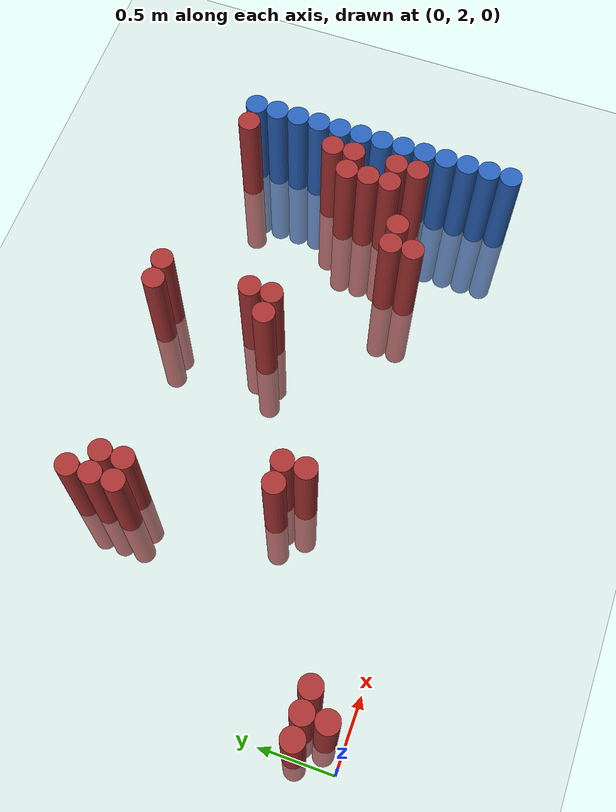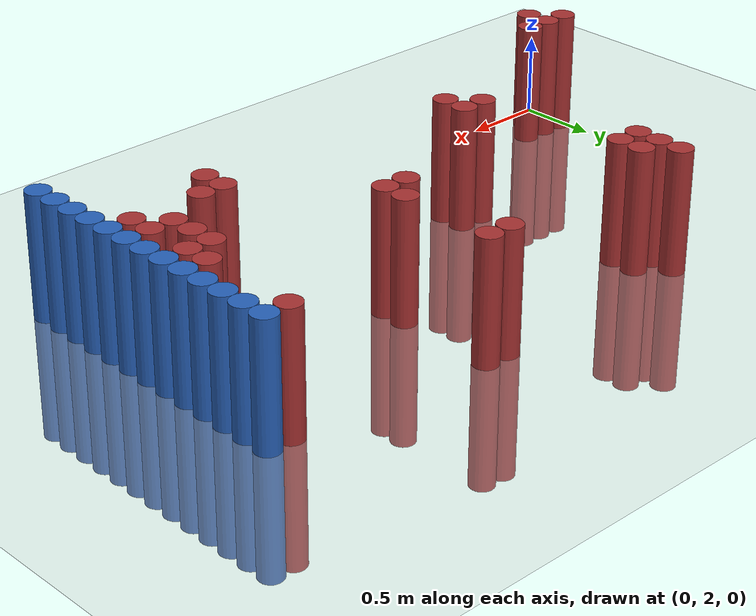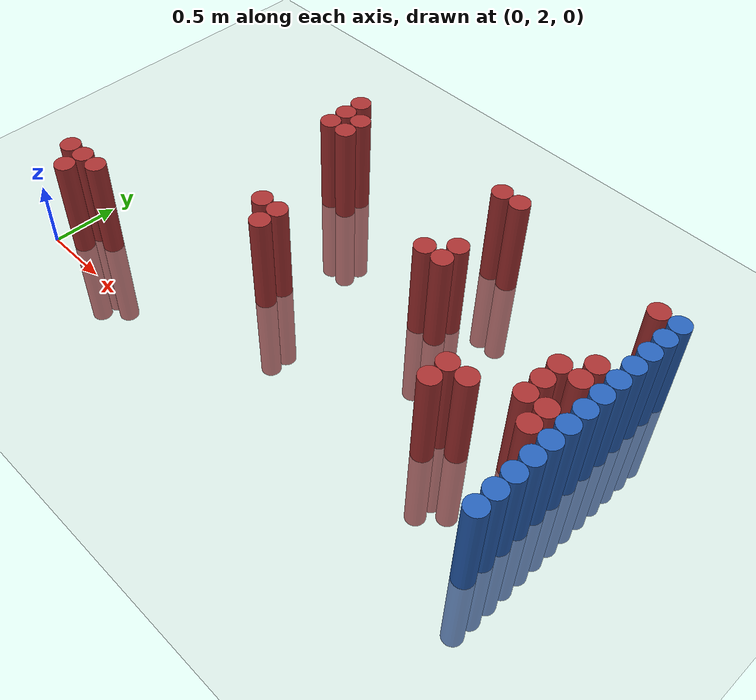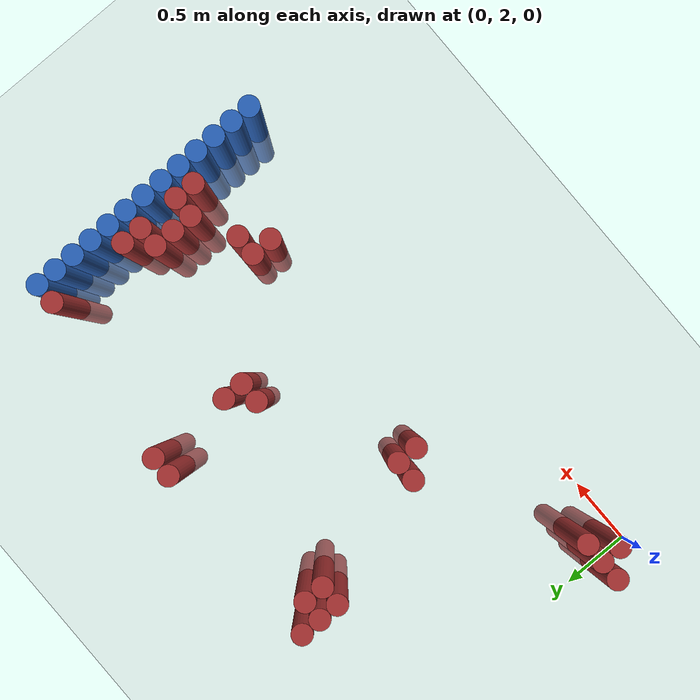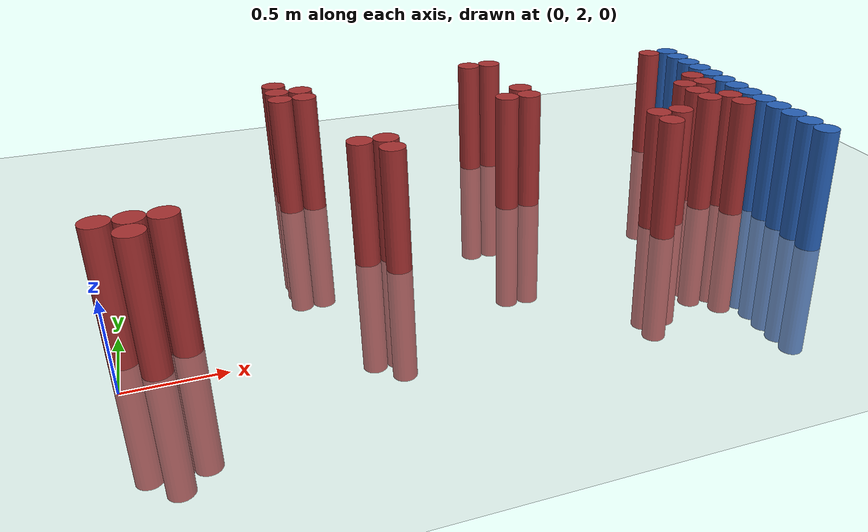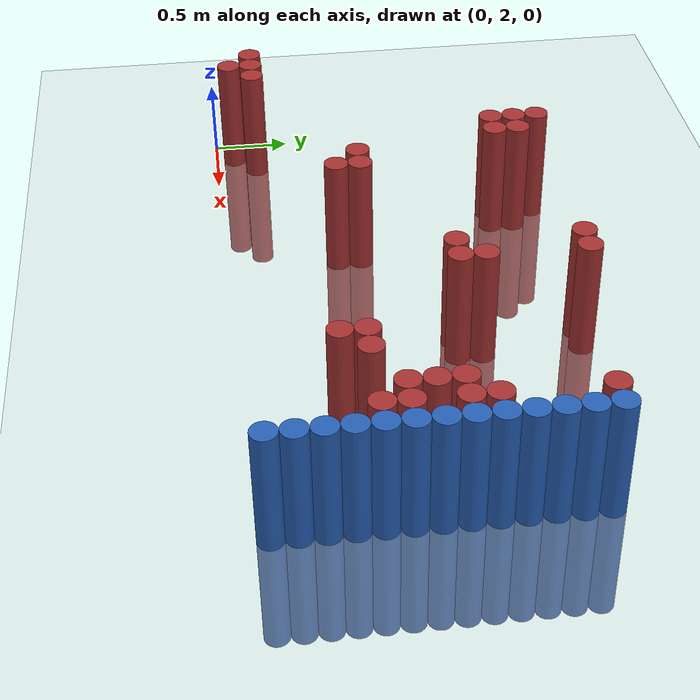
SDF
<sdf version="1.6">
 <world name="default">
  <model name="ground_plane">
   <static>1</static>
   <link name="link">
    <collision name="collision">
     <geometry><plane><normal>0 0 1</normal><size>100 100</size></plane></geometry>
     <surface><friction><ode><mu>100</mu><mu2>50</mu2></ode></friction></surface>
    </collision>
    <visual name="visual">
     <cast_shadows>0</cast_shadows>
     <geometry><plane><normal>0 0 1</normal><size>100 100</size></plane></geometry>
     <material>
      <script><uri>file://media/materials/scripts/gazebo.material</uri><name>Gazebo/Grey</name></script>
     </material>
    </visual>
   </link>
  </model>
  <model name="unit_cylinder_142">
   <static>1</static>
   <pose>3.925000 2.125000 0.000000 0.000000 0.000000 0.000000</pose>
   <link name="link">
    <inertial>
     <mass>1</mass>
     <inertia><ixx>0.145833</ixx><ixy>0</ixy><ixz>0</ixz><iyy>0.145833</iyy><iyz>0</iyz><izz>0.125</izz></inertia>
    </inertial>
    <collision name="collision">
     <geometry><cylinder><radius>0.075000</radius><length>1.5</length></cylinder></geometry>
    </collision>
    <visual name="visual">
     <geometry><cylinder><radius>0.075000</radius><length>1.5</length></cylinder></geometry>
     <material>
      <ambient>0.152000 0.379000 0.720000 1</ambient>
      <diffuse>0.152000 0.379000 0.720000 1</diffuse>
     </material>
     <material>
      <script><name>Gazebo/Grey</name><uri>file://media/materials/scripts/gazebo.material</uri></script>
     </material>
    </visual>
   </link>
  </model>
  <model name="unit_cylinder_144">
   <static>1</static>
   <pose>3.925000 2.275000 0.000000 0.000000 0.000000 0.000000</pose>
   <link name="link">
    <inertial>
     <mass>1</mass>
     <inertia><ixx>0.145833</ixx><ixy>0</ixy><ixz>0</ixz><iyy>0.145833</iyy><iyz>0</iyz><izz>0.125</izz></inertia>
    </inertial>
    <collision name="collision">
     <geometry><cylinder><radius>0.075000</radius><length>1.5</length></cylinder></geometry>
    </collision>
    <visual name="visual">
     <geometry><cylinder><radius>0.075000</radius><length>1.5</length></cylinder></geometry>
     <material>
      <ambient>0.152000 0.379000 0.720000 1</ambient>
      <diffuse>0.152000 0.379000 0.720000 1</diffuse>
     </material>
     <material>
      <script><name>Gazebo/Grey</name><uri>file://media/materials/scripts/gazebo.material</uri></script>
     </material>
    </visual>
   </link>
  </model>
  <model name="unit_cylinder_146">
   <static>1</static>
   <pose>3.925000 2.425000 0.000000 0.000000 0.000000 0.000000</pose>
   <link name="link">
    <inertial>
     <mass>1</mass>
     <inertia><ixx>0.145833</ixx><ixy>0</ixy><ixz>0</ixz><iyy>0.145833</iyy><iyz>0</iyz><izz>0.125</izz></inertia>
    </inertial>
    <collision name="collision">
     <geometry><cylinder><radius>0.075000</radius><length>1.5</length></cylinder></geometry>
    </collision>
    <visual name="visual">
     <geometry><cylinder><radius>0.075000</radius><length>1.5</length></cylinder></geometry>
     <material>
      <ambient>0.152000 0.379000 0.720000 1</ambient>
      <diffuse>0.152000 0.379000 0.720000 1</diffuse>
     </material>
     <material>
      <script><name>Gazebo/Grey</name><uri>file://media/materials/scripts/gazebo.material</uri></script>
     </material>
    </visual>
   </link>
  </model>
  <model name="unit_cylinder_148">
   <static>1</static>
   <pose>3.925000 2.575000 0.000000 0.000000 0.000000 0.000000</pose>
   <link name="link">
    <inertial>
     <mass>1</mass>
     <inertia><ixx>0.145833</ixx><ixy>0</ixy><ixz>0</ixz><iyy>0.145833</iyy><iyz>0</iyz><izz>0.125</izz></inertia>
    </inertial>
    <collision name="collision">
     <geometry><cylinder><radius>0.075000</radius><length>1.5</length></cylinder></geometry>
    </collision>
    <visual name="visual">
     <geometry><cylinder><radius>0.075000</radius><length>1.5</length></cylinder></geometry>
     <material>
      <ambient>0.152000 0.379000 0.720000 1</ambient>
      <diffuse>0.152000 0.379000 0.720000 1</diffuse>
     </material>
     <material>
      <script><name>Gazebo/Grey</name><uri>file://media/materials/scripts/gazebo.material</uri></script>
     </material>
    </visual>
   </link>
  </model>
  <model name="unit_cylinder_150">
   <static>1</static>
   <pose>3.925000 2.725000 0.000000 0.000000 0.000000 0.000000</pose>
   <link name="link">
    <inertial>
     <mass>1</mass>
     <inertia><ixx>0.145833</ixx><ixy>0</ixy><ixz>0</ixz><iyy>0.145833</iyy><iyz>0</iyz><izz>0.125</izz></inertia>
    </inertial>
    <collision name="collision">
     <geometry><cylinder><radius>0.075000</radius><length>1.5</length></cylinder></geometry>
    </collision>
    <visual name="visual">
     <geometry><cylinder><radius>0.075000</radius><length>1.5</length></cylinder></geometry>
     <material>
      <ambient>0.152000 0.379000 0.720000 1</ambient>
      <diffuse>0.152000 0.379000 0.720000 1</diffuse>
     </material>
     <material>
      <script><name>Gazebo/Grey</name><uri>file://media/materials/scripts/gazebo.material</uri></script>
     </material>
    </visual>
   </link>
  </model>
  <model name="unit_cylinder_152">
   <static>1</static>
   <pose>3.925000 2.875000 0.000000 0.000000 0.000000 0.000000</pose>
   <link name="link">
    <inertial>
     <mass>1</mass>
     <inertia><ixx>0.145833</ixx><ixy>0</ixy><ixz>0</ixz><iyy>0.145833</iyy><iyz>0</iyz><izz>0.125</izz></inertia>
    </inertial>
    <collision name="collision">
     <geometry><cylinder><radius>0.075000</radius><length>1.5</length></cylinder></geometry>
    </collision>
    <visual name="visual">
     <geometry><cylinder><radius>0.075000</radius><length>1.5</length></cylinder></geometry>
     <material>
      <ambient>0.152000 0.379000 0.720000 1</ambient>
      <diffuse>0.152000 0.379000 0.720000 1</diffuse>
     </material>
     <material>
      <script><name>Gazebo/Grey</name><uri>file://media/materials/scripts/gazebo.material</uri></script>
     </material>
    </visual>
   </link>
  </model>
  <model name="unit_cylinder_154">
   <static>1</static>
   <pose>3.925000 3.025000 0.000000 0.000000 0.000000 0.000000</pose>
   <link name="link">
    <inertial>
     <mass>1</mass>
     <inertia><ixx>0.145833</ixx><ixy>0</ixy><ixz>0</ixz><iyy>0.145833</iyy><iyz>0</iyz><izz>0.125</izz></inertia>
    </inertial>
    <collision name="collision">
     <geometry><cylinder><radius>0.075000</radius><length>1.5</length></cylinder></geometry>
    </collision>
    <visual name="visual">
     <geometry><cylinder><radius>0.075000</radius><length>1.5</length></cylinder></geometry>
     <material>
      <ambient>0.152000 0.379000 0.720000 1</ambient>
      <diffuse>0.152000 0.379000 0.720000 1</diffuse>
     </material>
     <material>
      <script><name>Gazebo/Grey</name><uri>file://media/materials/scripts/gazebo.material</uri></script>
     </material>
    </visual>
   </link>
  </model>
  <model name="unit_cylinder_156">
   <static>1</static>
   <pose>3.925000 3.175000 0.000000 0.000000 0.000000 0.000000</pose>
   <link name="link">
    <inertial>
     <mass>1</mass>
     <inertia><ixx>0.145833</ixx><ixy>0</ixy><ixz>0</ixz><iyy>0.145833</iyy><iyz>0</iyz><izz>0.125</izz></inertia>
    </inertial>
    <collision name="collision">
     <geometry><cylinder><radius>0.075000</radius><length>1.5</length></cylinder></geometry>
    </collision>
    <visual name="visual">
     <geometry><cylinder><radius>0.075000</radius><length>1.5</length></cylinder></geometry>
     <material>
      <ambient>0.152000 0.379000 0.720000 1</ambient>
      <diffuse>0.152000 0.379000 0.720000 1</diffuse>
     </material>
     <material>
      <script><name>Gazebo/Grey</name><uri>file://media/materials/scripts/gazebo.material</uri></script>
     </material>
    </visual>
   </link>
  </model>
  <model name="unit_cylinder_158">
   <static>1</static>
   <pose>3.925000 3.325000 0.000000 0.000000 0.000000 0.000000</pose>
   <link name="link">
    <inertial>
     <mass>1</mass>
     <inertia><ixx>0.145833</ixx><ixy>0</ixy><ixz>0</ixz><iyy>0.145833</iyy><iyz>0</iyz><izz>0.125</izz></inertia>
    </inertial>
    <collision name="collision">
     <geometry><cylinder><radius>0.075000</radius><length>1.5</length></cylinder></geometry>
    </collision>
    <visual name="visual">
     <geometry><cylinder><radius>0.075000</radius><length>1.5</length></cylinder></geometry>
     <material>
      <ambient>0.152000 0.379000 0.720000 1</ambient>
      <diffuse>0.152000 0.379000 0.720000 1</diffuse>
     </material>
     <material>
      <script><name>Gazebo/Grey</name><uri>file://media/materials/scripts/gazebo.material</uri></script>
     </material>
    </visual>
   </link>
  </model>
  <model name="unit_cylinder_160">
   <static>1</static>
   <pose>3.925000 3.475000 0.000000 0.000000 0.000000 0.000000</pose>
   <link name="link">
    <inertial>
     <mass>1</mass>
     <inertia><ixx>0.145833</ixx><ixy>0</ixy><ixz>0</ixz><iyy>0.145833</iyy><iyz>0</iyz><izz>0.125</izz></inertia>
    </inertial>
    <collision name="collision">
     <geometry><cylinder><radius>0.075000</radius><length>1.5</length></cylinder></geometry>
    </collision>
    <visual name="visual">
     <geometry><cylinder><radius>0.075000</radius><length>1.5</length></cylinder></geometry>
     <material>
      <ambient>0.152000 0.379000 0.720000 1</ambient>
      <diffuse>0.152000 0.379000 0.720000 1</diffuse>
     </material>
     <material>
      <script><name>Gazebo/Grey</name><uri>file://media/materials/scripts/gazebo.material</uri></script>
     </material>
    </visual>
   </link>
  </model>
  <model name="unit_cylinder_162">
   <static>1</static>
   <pose>3.925000 3.625000 0.000000 0.000000 0.000000 0.000000</pose>
   <link name="link">
    <inertial>
     <mass>1</mass>
     <inertia><ixx>0.145833</ixx><ixy>0</ixy><ixz>0</ixz><iyy>0.145833</iyy><iyz>0</iyz><izz>0.125</izz></inertia>
    </inertial>
    <collision name="collision">
     <geometry><cylinder><radius>0.075000</radius><length>1.5</length></cylinder></geometry>
    </collision>
    <visual name="visual">
     <geometry><cylinder><radius>0.075000</radius><length>1.5</length></cylinder></geometry>
     <material>
      <ambient>0.152000 0.379000 0.720000 1</ambient>
      <diffuse>0.152000 0.379000 0.720000 1</diffuse>
     </material>
     <material>
      <script><name>Gazebo/Grey</name><uri>file://media/materials/scripts/gazebo.material</uri></script>
     </material>
    </visual>
   </link>
  </model>
  <model name="unit_cylinder_164">
   <static>1</static>
   <pose>3.925000 3.775000 0.000000 0.000000 0.000000 0.000000</pose>
   <link name="link">
    <inertial>
     <mass>1</mass>
     <inertia><ixx>0.145833</ixx><ixy>0</ixy><ixz>0</ixz><iyy>0.145833</iyy><iyz>0</iyz><izz>0.125</izz></inertia>
    </inertial>
    <collision name="collision">
     <geometry><cylinder><radius>0.075000</radius><length>1.5</length></cylinder></geometry>
    </collision>
    <visual name="visual">
     <geometry><cylinder><radius>0.075000</radius><length>1.5</length></cylinder></geometry>
     <material>
      <ambient>0.152000 0.379000 0.720000 1</ambient>
      <diffuse>0.152000 0.379000 0.720000 1</diffuse>
     </material>
     <material>
      <script><name>Gazebo/Grey</name><uri>file://media/materials/scripts/gazebo.material</uri></script>
     </material>
    </visual>
   </link>
  </model>
  <model name="unit_cylinder_166">
   <static>1</static>
   <pose>3.925000 3.925000 0.000000 0.000000 0.000000 0.000000</pose>
   <link name="link">
    <inertial>
     <mass>1</mass>
     <inertia><ixx>0.145833</ixx><ixy>0</ixy><ixz>0</ixz><iyy>0.145833</iyy><iyz>0</iyz><izz>0.125</izz></inertia>
    </inertial>
    <collision name="collision">
     <geometry><cylinder><radius>0.075000</radius><length>1.5</length></cylinder></geometry>
    </collision>
    <visual name="visual">
     <geometry><cylinder><radius>0.075000</radius><length>1.5</length></cylinder></geometry>
     <material>
      <ambient>0.152000 0.379000 0.720000 1</ambient>
      <diffuse>0.152000 0.379000 0.720000 1</diffuse>
     </material>
     <material>
      <script><name>Gazebo/Grey</name><uri>file://media/materials/scripts/gazebo.material</uri></script>
     </material>
    </visual>
   </link>
  </model>
  <model name="unit_cylinder_327">
   <static>1</static>
   <pose>0.025000 2.275000 0.000000 0.000000 0.000000 0.000000</pose>
   <link name="link">
    <inertial>
     <mass>1</mass>
     <inertia><ixx>0.145833</ixx><ixy>0</ixy><ixz>0</ixz><iyy>0.145833</iyy><iyz>0</iyz><izz>0.125</izz></inertia>
    </inertial>
    <collision name="collision">
     <geometry><cylinder><radius>0.075000</radius><length>1.5</length></cylinder></geometry>
    </collision>
    <visual name="visual">
     <geometry><cylinder><radius>0.075000</radius><length>1.5</length></cylinder></geometry>
     <material>
      <ambient>0.648000 0.192000 0.192000 1</ambient>
      <diffuse>0.648000 0.192000 0.192000 1</diffuse>
     </material>
     <material>
      <script><name>Gazebo/Grey</name><uri>file://media/materials/scripts/gazebo.material</uri></script>
     </material>
    </visual>
   </link>
  </model>
  <model name="unit_cylinder_332">
   <static>1</static>
   <pose>0.175000 2.125000 0.000000 0.000000 0.000000 0.000000</pose>
   <link name="link">
    <inertial>
     <mass>1</mass>
     <inertia><ixx>0.145833</ixx><ixy>0</ixy><ixz>0</ixz><iyy>0.145833</iyy><iyz>0</iyz><izz>0.125</izz></inertia>
    </inertial>
    <collision name="collision">
     <geometry><cylinder><radius>0.075000</radius><length>1.5</length></cylinder></geometry>
    </collision>
    <visual name="visual">
     <geometry><cylinder><radius>0.075000</radius><length>1.5</length></cylinder></geometry>
     <material>
      <ambient>0.648000 0.192000 0.192000 1</ambient>
      <diffuse>0.648000 0.192000 0.192000 1</diffuse>
     </material>
     <material>
      <script><name>Gazebo/Grey</name><uri>file://media/materials/scripts/gazebo.material</uri></script>
     </material>
    </visual>
   </link>
  </model>
  <model name="unit_cylinder_333">
   <static>1</static>
   <pose>0.175000 2.275000 0.000000 0.000000 0.000000 0.000000</pose>
   <link name="link">
    <inertial>
     <mass>1</mass>
     <inertia><ixx>0.145833</ixx><ixy>0</ixy><ixz>0</ixz><iyy>0.145833</iyy><iyz>0</iyz><izz>0.125</izz></inertia>
    </inertial>
    <collision name="collision">
     <geometry><cylinder><radius>0.075000</radius><length>1.5</length></cylinder></geometry>
    </collision>
    <visual name="visual">
     <geometry><cylinder><radius>0.075000</radius><length>1.5</length></cylinder></geometry>
     <material>
      <ambient>0.648000 0.192000 0.192000 1</ambient>
      <diffuse>0.648000 0.192000 0.192000 1</diffuse>
     </material>
     <material>
      <script><name>Gazebo/Grey</name><uri>file://media/materials/scripts/gazebo.material</uri></script>
     </material>
    </visual>
   </link>
  </model>
  <model name="unit_cylinder_339">
   <static>1</static>
   <pose>0.325000 2.275000 0.000000 0.000000 0.000000 0.000000</pose>
   <link name="link">
    <inertial>
     <mass>1</mass>
     <inertia><ixx>0.145833</ixx><ixy>0</ixy><ixz>0</ixz><iyy>0.145833</iyy><iyz>0</iyz><izz>0.125</izz></inertia>
    </inertial>
    <collision name="collision">
     <geometry><cylinder><radius>0.075000</radius><length>1.5</length></cylinder></geometry>
    </collision>
    <visual name="visual">
     <geometry><cylinder><radius>0.075000</radius><length>1.5</length></cylinder></geometry>
     <material>
      <ambient>0.648000 0.192000 0.192000 1</ambient>
      <diffuse>0.648000 0.192000 0.192000 1</diffuse>
     </material>
     <material>
      <script><name>Gazebo/Grey</name><uri>file://media/materials/scripts/gazebo.material</uri></script>
     </material>
    </visual>
   </link>
  </model>
  <model name="unit_cylinder_351">
   <static>1</static>
   <pose>1.075000 3.775000 0.000000 0.000000 0.000000 0.000000</pose>
   <link name="link">
    <inertial>
     <mass>1</mass>
     <inertia><ixx>0.145833</ixx><ixy>0</ixy><ixz>0</ixz><iyy>0.145833</iyy><iyz>0</iyz><izz>0.125</izz></inertia>
    </inertial>
    <collision name="collision">
     <geometry><cylinder><radius>0.075000</radius><length>1.5</length></cylinder></geometry>
    </collision>
    <visual name="visual">
     <geometry><cylinder><radius>0.075000</radius><length>1.5</length></cylinder></geometry>
     <material>
      <ambient>0.648000 0.192000 0.192000 1</ambient>
      <diffuse>0.648000 0.192000 0.192000 1</diffuse>
     </material>
     <material>
      <script><name>Gazebo/Grey</name><uri>file://media/materials/scripts/gazebo.material</uri></script>
     </material>
    </visual>
   </link>
  </model>
  <model name="unit_cylinder_352">
   <static>1</static>
   <pose>1.075000 3.925000 0.000000 0.000000 0.000000 0.000000</pose>
   <link name="link">
    <inertial>
     <mass>1</mass>
     <inertia><ixx>0.145833</ixx><ixy>0</ixy><ixz>0</ixz><iyy>0.145833</iyy><iyz>0</iyz><izz>0.125</izz></inertia>
    </inertial>
    <collision name="collision">
     <geometry><cylinder><radius>0.075000</radius><length>1.5</length></cylinder></geometry>
    </collision>
    <visual name="visual">
     <geometry><cylinder><radius>0.075000</radius><length>1.5</length></cylinder></geometry>
     <material>
      <ambient>0.648000 0.192000 0.192000 1</ambient>
      <diffuse>0.648000 0.192000 0.192000 1</diffuse>
     </material>
     <material>
      <script><name>Gazebo/Grey</name><uri>file://media/materials/scripts/gazebo.material</uri></script>
     </material>
    </visual>
   </link>
  </model>
  <model name="unit_cylinder_353">
   <static>1</static>
   <pose>1.075000 4.075000 0.000000 0.000000 0.000000 0.000000</pose>
   <link name="link">
    <inertial>
     <mass>1</mass>
     <inertia><ixx>0.145833</ixx><ixy>0</ixy><ixz>0</ixz><iyy>0.145833</iyy><iyz>0</iyz><izz>0.125</izz></inertia>
    </inertial>
    <collision name="collision">
     <geometry><cylinder><radius>0.075000</radius><length>1.5</length></cylinder></geometry>
    </collision>
    <visual name="visual">
     <geometry><cylinder><radius>0.075000</radius><length>1.5</length></cylinder></geometry>
     <material>
      <ambient>0.648000 0.192000 0.192000 1</ambient>
      <diffuse>0.648000 0.192000 0.192000 1</diffuse>
     </material>
     <material>
      <script><name>Gazebo/Grey</name><uri>file://media/materials/scripts/gazebo.material</uri></script>
     </material>
    </visual>
   </link>
  </model>
  <model name="unit_cylinder_358">
   <static>1</static>
   <pose>1.225000 3.775000 0.000000 0.000000 0.000000 0.000000</pose>
   <link name="link">
    <inertial>
     <mass>1</mass>
     <inertia><ixx>0.145833</ixx><ixy>0</ixy><ixz>0</ixz><iyy>0.145833</iyy><iyz>0</iyz><izz>0.125</izz></inertia>
    </inertial>
    <collision name="collision">
     <geometry><cylinder><radius>0.075000</radius><length>1.5</length></cylinder></geometry>
    </collision>
    <visual name="visual">
     <geometry><cylinder><radius>0.075000</radius><length>1.5</length></cylinder></geometry>
     <material>
      <ambient>0.648000 0.192000 0.192000 1</ambient>
      <diffuse>0.648000 0.192000 0.192000 1</diffuse>
     </material>
     <material>
      <script><name>Gazebo/Grey</name><uri>file://media/materials/scripts/gazebo.material</uri></script>
     </material>
    </visual>
   </link>
  </model>
  <model name="unit_cylinder_359">
   <static>1</static>
   <pose>1.225000 3.925000 0.000000 0.000000 0.000000 0.000000</pose>
   <link name="link">
    <inertial>
     <mass>1</mass>
     <inertia><ixx>0.145833</ixx><ixy>0</ixy><ixz>0</ixz><iyy>0.145833</iyy><iyz>0</iyz><izz>0.125</izz></inertia>
    </inertial>
    <collision name="collision">
     <geometry><cylinder><radius>0.075000</radius><length>1.5</length></cylinder></geometry>
    </collision>
    <visual name="visual">
     <geometry><cylinder><radius>0.075000</radius><length>1.5</length></cylinder></geometry>
     <material>
      <ambient>0.648000 0.192000 0.192000 1</ambient>
      <diffuse>0.648000 0.192000 0.192000 1</diffuse>
     </material>
     <material>
      <script><name>Gazebo/Grey</name><uri>file://media/materials/scripts/gazebo.material</uri></script>
     </material>
    </visual>
   </link>
  </model>
  <model name="unit_cylinder_363">
   <static>1</static>
   <pose>1.375000 2.875000 0.000000 0.000000 0.000000 0.000000</pose>
   <link name="link">
    <inertial>
     <mass>1</mass>
     <inertia><ixx>0.145833</ixx><ixy>0</ixy><ixz>0</ixz><iyy>0.145833</iyy><iyz>0</iyz><izz>0.125</izz></inertia>
    </inertial>
    <collision name="collision">
     <geometry><cylinder><radius>0.075000</radius><length>1.5</length></cylinder></geometry>
    </collision>
    <visual name="visual">
     <geometry><cylinder><radius>0.075000</radius><length>1.5</length></cylinder></geometry>
     <material>
      <ambient>0.648000 0.192000 0.192000 1</ambient>
      <diffuse>0.648000 0.192000 0.192000 1</diffuse>
     </material>
     <material>
      <script><name>Gazebo/Grey</name><uri>file://media/materials/scripts/gazebo.material</uri></script>
     </material>
    </visual>
   </link>
  </model>
  <model name="unit_cylinder_365">
   <static>1</static>
   <pose>1.525000 2.725000 0.000000 0.000000 0.000000 0.000000</pose>
   <link name="link">
    <inertial>
     <mass>1</mass>
     <inertia><ixx>0.145833</ixx><ixy>0</ixy><ixz>0</ixz><iyy>0.145833</iyy><iyz>0</iyz><izz>0.125</izz></inertia>
    </inertial>
    <collision name="collision">
     <geometry><cylinder><radius>0.075000</radius><length>1.5</length></cylinder></geometry>
    </collision>
    <visual name="visual">
     <geometry><cylinder><radius>0.075000</radius><length>1.5</length></cylinder></geometry>
     <material>
      <ambient>0.648000 0.192000 0.192000 1</ambient>
      <diffuse>0.648000 0.192000 0.192000 1</diffuse>
     </material>
     <material>
      <script><name>Gazebo/Grey</name><uri>file://media/materials/scripts/gazebo.material</uri></script>
     </material>
    </visual>
   </link>
  </model>
  <model name="unit_cylinder_366">
   <static>1</static>
   <pose>1.525000 2.875000 0.000000 0.000000 0.000000 0.000000</pose>
   <link name="link">
    <inertial>
     <mass>1</mass>
     <inertia><ixx>0.145833</ixx><ixy>0</ixy><ixz>0</ixz><iyy>0.145833</iyy><iyz>0</iyz><izz>0.125</izz></inertia>
    </inertial>
    <collision name="collision">
     <geometry><cylinder><radius>0.075000</radius><length>1.5</length></cylinder></geometry>
    </collision>
    <visual name="visual">
     <geometry><cylinder><radius>0.075000</radius><length>1.5</length></cylinder></geometry>
     <material>
      <ambient>0.648000 0.192000 0.192000 1</ambient>
      <diffuse>0.648000 0.192000 0.192000 1</diffuse>
     </material>
     <material>
      <script><name>Gazebo/Grey</name><uri>file://media/materials/scripts/gazebo.material</uri></script>
     </material>
    </visual>
   </link>
  </model>
  <model name="unit_cylinder_380">
   <static>1</static>
   <pose>2.425000 3.325000 0.000000 0.000000 0.000000 0.000000</pose>
   <link name="link">
    <inertial>
     <mass>1</mass>
     <inertia><ixx>0.145833</ixx><ixy>0</ixy><ixz>0</ixz><iyy>0.145833</iyy><iyz>0</iyz><izz>0.125</izz></inertia>
    </inertial>
    <collision name="collision">
     <geometry><cylinder><radius>0.075000</radius><length>1.5</length></cylinder></geometry>
    </collision>
    <visual name="visual">
     <geometry><cylinder><radius>0.075000</radius><length>1.5</length></cylinder></geometry>
     <material>
      <ambient>0.648000 0.192000 0.192000 1</ambient>
      <diffuse>0.648000 0.192000 0.192000 1</diffuse>
     </material>
     <material>
      <script><name>Gazebo/Grey</name><uri>file://media/materials/scripts/gazebo.material</uri></script>
     </material>
    </visual>
   </link>
  </model>
  <model name="unit_cylinder_381">
   <static>1</static>
   <pose>2.425000 4.075000 0.000000 0.000000 0.000000 0.000000</pose>
   <link name="link">
    <inertial>
     <mass>1</mass>
     <inertia><ixx>0.145833</ixx><ixy>0</ixy><ixz>0</ixz><iyy>0.145833</iyy><iyz>0</iyz><izz>0.125</izz></inertia>
    </inertial>
    <collision name="collision">
     <geometry><cylinder><radius>0.075000</radius><length>1.5</length></cylinder></geometry>
    </collision>
    <visual name="visual">
     <geometry><cylinder><radius>0.075000</radius><length>1.5</length></cylinder></geometry>
     <material>
      <ambient>0.648000 0.192000 0.192000 1</ambient>
      <diffuse>0.648000 0.192000 0.192000 1</diffuse>
     </material>
     <material>
      <script><name>Gazebo/Grey</name><uri>file://media/materials/scripts/gazebo.material</uri></script>
     </material>
    </visual>
   </link>
  </model>
  <model name="unit_cylinder_383">
   <static>1</static>
   <pose>2.575000 3.325000 0.000000 0.000000 0.000000 0.000000</pose>
   <link name="link">
    <inertial>
     <mass>1</mass>
     <inertia><ixx>0.145833</ixx><ixy>0</ixy><ixz>0</ixz><iyy>0.145833</iyy><iyz>0</iyz><izz>0.125</izz></inertia>
    </inertial>
    <collision name="collision">
     <geometry><cylinder><radius>0.075000</radius><length>1.5</length></cylinder></geometry>
    </collision>
    <visual name="visual">
     <geometry><cylinder><radius>0.075000</radius><length>1.5</length></cylinder></geometry>
     <material>
      <ambient>0.648000 0.192000 0.192000 1</ambient>
      <diffuse>0.648000 0.192000 0.192000 1</diffuse>
     </material>
     <material>
      <script><name>Gazebo/Grey</name><uri>file://media/materials/scripts/gazebo.material</uri></script>
     </material>
    </visual>
   </link>
  </model>
  <model name="unit_cylinder_384">
   <static>1</static>
   <pose>2.575000 3.475000 0.000000 0.000000 0.000000 0.000000</pose>
   <link name="link">
    <inertial>
     <mass>1</mass>
     <inertia><ixx>0.145833</ixx><ixy>0</ixy><ixz>0</ixz><iyy>0.145833</iyy><iyz>0</iyz><izz>0.125</izz></inertia>
    </inertial>
    <collision name="collision">
     <geometry><cylinder><radius>0.075000</radius><length>1.5</length></cylinder></geometry>
    </collision>
    <visual name="visual">
     <geometry><cylinder><radius>0.075000</radius><length>1.5</length></cylinder></geometry>
     <material>
      <ambient>0.648000 0.192000 0.192000 1</ambient>
      <diffuse>0.648000 0.192000 0.192000 1</diffuse>
     </material>
     <material>
      <script><name>Gazebo/Grey</name><uri>file://media/materials/scripts/gazebo.material</uri></script>
     </material>
    </visual>
   </link>
  </model>
  <model name="unit_cylinder_385">
   <static>1</static>
   <pose>2.575000 4.075000 0.000000 0.000000 0.000000 0.000000</pose>
   <link name="link">
    <inertial>
     <mass>1</mass>
     <inertia><ixx>0.145833</ixx><ixy>0</ixy><ixz>0</ixz><iyy>0.145833</iyy><iyz>0</iyz><izz>0.125</izz></inertia>
    </inertial>
    <collision name="collision">
     <geometry><cylinder><radius>0.075000</radius><length>1.5</length></cylinder></geometry>
    </collision>
    <visual name="visual">
     <geometry><cylinder><radius>0.075000</radius><length>1.5</length></cylinder></geometry>
     <material>
      <ambient>0.648000 0.192000 0.192000 1</ambient>
      <diffuse>0.648000 0.192000 0.192000 1</diffuse>
     </material>
     <material>
      <script><name>Gazebo/Grey</name><uri>file://media/materials/scripts/gazebo.material</uri></script>
     </material>
    </visual>
   </link>
  </model>
  <model name="unit_cylinder_393">
   <static>1</static>
   <pose>3.175000 2.575000 0.000000 0.000000 0.000000 0.000000</pose>
   <link name="link">
    <inertial>
     <mass>1</mass>
     <inertia><ixx>0.145833</ixx><ixy>0</ixy><ixz>0</ixz><iyy>0.145833</iyy><iyz>0</iyz><izz>0.125</izz></inertia>
    </inertial>
    <collision name="collision">
     <geometry><cylinder><radius>0.075000</radius><length>1.5</length></cylinder></geometry>
    </collision>
    <visual name="visual">
     <geometry><cylinder><radius>0.075000</radius><length>1.5</length></cylinder></geometry>
     <material>
      <ambient>0.648000 0.192000 0.192000 1</ambient>
      <diffuse>0.648000 0.192000 0.192000 1</diffuse>
     </material>
     <material>
      <script><name>Gazebo/Grey</name><uri>file://media/materials/scripts/gazebo.material</uri></script>
     </material>
    </visual>
   </link>
  </model>
  <model name="unit_cylinder_394">
   <static>1</static>
   <pose>3.175000 2.725000 0.000000 0.000000 0.000000 0.000000</pose>
   <link name="link">
    <inertial>
     <mass>1</mass>
     <inertia><ixx>0.145833</ixx><ixy>0</ixy><ixz>0</ixz><iyy>0.145833</iyy><iyz>0</iyz><izz>0.125</izz></inertia>
    </inertial>
    <collision name="collision">
     <geometry><cylinder><radius>0.075000</radius><length>1.5</length></cylinder></geometry>
    </collision>
    <visual name="visual">
     <geometry><cylinder><radius>0.075000</radius><length>1.5</length></cylinder></geometry>
     <material>
      <ambient>0.648000 0.192000 0.192000 1</ambient>
      <diffuse>0.648000 0.192000 0.192000 1</diffuse>
     </material>
     <material>
      <script><name>Gazebo/Grey</name><uri>file://media/materials/scripts/gazebo.material</uri></script>
     </material>
    </visual>
   </link>
  </model>
  <model name="unit_cylinder_398">
   <static>1</static>
   <pose>3.325000 2.725000 0.000000 0.000000 0.000000 0.000000</pose>
   <link name="link">
    <inertial>
     <mass>1</mass>
     <inertia><ixx>0.145833</ixx><ixy>0</ixy><ixz>0</ixz><iyy>0.145833</iyy><iyz>0</iyz><izz>0.125</izz></inertia>
    </inertial>
    <collision name="collision">
     <geometry><cylinder><radius>0.075000</radius><length>1.5</length></cylinder></geometry>
    </collision>
    <visual name="visual">
     <geometry><cylinder><radius>0.075000</radius><length>1.5</length></cylinder></geometry>
     <material>
      <ambient>0.648000 0.192000 0.192000 1</ambient>
      <diffuse>0.648000 0.192000 0.192000 1</diffuse>
     </material>
     <material>
      <script><name>Gazebo/Grey</name><uri>file://media/materials/scripts/gazebo.material</uri></script>
     </material>
    </visual>
   </link>
  </model>
  <model name="unit_cylinder_414">
   <static>1</static>
   <pose>3.625000 2.875000 0.000000 0.000000 0.000000 0.000000</pose>
   <link name="link">
    <inertial>
     <mass>1</mass>
     <inertia><ixx>0.145833</ixx><ixy>0</ixy><ixz>0</ixz><iyy>0.145833</iyy><iyz>0</iyz><izz>0.125</izz></inertia>
    </inertial>
    <collision name="collision">
     <geometry><cylinder><radius>0.075000</radius><length>1.5</length></cylinder></geometry>
    </collision>
    <visual name="visual">
     <geometry><cylinder><radius>0.075000</radius><length>1.5</length></cylinder></geometry>
     <material>
      <ambient>0.648000 0.192000 0.192000 1</ambient>
      <diffuse>0.648000 0.192000 0.192000 1</diffuse>
     </material>
     <material>
      <script><name>Gazebo/Grey</name><uri>file://media/materials/scripts/gazebo.material</uri></script>
     </material>
    </visual>
   </link>
  </model>
  <model name="unit_cylinder_415">
   <static>1</static>
   <pose>3.625000 3.025000 0.000000 0.000000 0.000000 0.000000</pose>
   <link name="link">
    <inertial>
     <mass>1</mass>
     <inertia><ixx>0.145833</ixx><ixy>0</ixy><ixz>0</ixz><iyy>0.145833</iyy><iyz>0</iyz><izz>0.125</izz></inertia>
    </inertial>
    <collision name="collision">
     <geometry><cylinder><radius>0.075000</radius><length>1.5</length></cylinder></geometry>
    </collision>
    <visual name="visual">
     <geometry><cylinder><radius>0.075000</radius><length>1.5</length></cylinder></geometry>
     <material>
      <ambient>0.648000 0.192000 0.192000 1</ambient>
      <diffuse>0.648000 0.192000 0.192000 1</diffuse>
     </material>
     <material>
      <script><name>Gazebo/Grey</name><uri>file://media/materials/scripts/gazebo.material</uri></script>
     </material>
    </visual>
   </link>
  </model>
  <model name="unit_cylinder_416">
   <static>1</static>
   <pose>3.625000 3.175000 0.000000 0.000000 0.000000 0.000000</pose>
   <link name="link">
    <inertial>
     <mass>1</mass>
     <inertia><ixx>0.145833</ixx><ixy>0</ixy><ixz>0</ixz><iyy>0.145833</iyy><iyz>0</iyz><izz>0.125</izz></inertia>
    </inertial>
    <collision name="collision">
     <geometry><cylinder><radius>0.075000</radius><length>1.5</length></cylinder></geometry>
    </collision>
    <visual name="visual">
     <geometry><cylinder><radius>0.075000</radius><length>1.5</length></cylinder></geometry>
     <material>
      <ambient>0.648000 0.192000 0.192000 1</ambient>
      <diffuse>0.648000 0.192000 0.192000 1</diffuse>
     </material>
     <material>
      <script><name>Gazebo/Grey</name><uri>file://media/materials/scripts/gazebo.material</uri></script>
     </material>
    </visual>
   </link>
  </model>
  <model name="unit_cylinder_429">
   <static>1</static>
   <pose>3.775000 2.725000 0.000000 0.000000 0.000000 0.000000</pose>
   <link name="link">
    <inertial>
     <mass>1</mass>
     <inertia><ixx>0.145833</ixx><ixy>0</ixy><ixz>0</ixz><iyy>0.145833</iyy><iyz>0</iyz><izz>0.125</izz></inertia>
    </inertial>
    <collision name="collision">
     <geometry><cylinder><radius>0.075000</radius><length>1.5</length></cylinder></geometry>
    </collision>
    <visual name="visual">
     <geometry><cylinder><radius>0.075000</radius><length>1.5</length></cylinder></geometry>
     <material>
      <ambient>0.648000 0.192000 0.192000 1</ambient>
      <diffuse>0.648000 0.192000 0.192000 1</diffuse>
     </material>
     <material>
      <script><name>Gazebo/Grey</name><uri>file://media/materials/scripts/gazebo.material</uri></script>
     </material>
    </visual>
   </link>
  </model>
  <model name="unit_cylinder_430">
   <static>1</static>
   <pose>3.775000 2.875000 0.000000 0.000000 0.000000 0.000000</pose>
   <link name="link">
    <inertial>
     <mass>1</mass>
     <inertia><ixx>0.145833</ixx><ixy>0</ixy><ixz>0</ixz><iyy>0.145833</iyy><iyz>0</iyz><izz>0.125</izz></inertia>
    </inertial>
    <collision name="collision">
     <geometry><cylinder><radius>0.075000</radius><length>1.5</length></cylinder></geometry>
    </collision>
    <visual name="visual">
     <geometry><cylinder><radius>0.075000</radius><length>1.5</length></cylinder></geometry>
     <material>
      <ambient>0.648000 0.192000 0.192000 1</ambient>
      <diffuse>0.648000 0.192000 0.192000 1</diffuse>
     </material>
     <material>
      <script><name>Gazebo/Grey</name><uri>file://media/materials/scripts/gazebo.material</uri></script>
     </material>
    </visual>
   </link>
  </model>
  <model name="unit_cylinder_431">
   <static>1</static>
   <pose>3.775000 3.175000 0.000000 0.000000 0.000000 0.000000</pose>
   <link name="link">
    <inertial>
     <mass>1</mass>
     <inertia><ixx>0.145833</ixx><ixy>0</ixy><ixz>0</ixz><iyy>0.145833</iyy><iyz>0</iyz><izz>0.125</izz></inertia>
    </inertial>
    <collision name="collision">
     <geometry><cylinder><radius>0.075000</radius><length>1.5</length></cylinder></geometry>
    </collision>
    <visual name="visual">
     <geometry><cylinder><radius>0.075000</radius><length>1.5</length></cylinder></geometry>
     <material>
      <ambient>0.648000 0.192000 0.192000 1</ambient>
      <diffuse>0.648000 0.192000 0.192000 1</diffuse>
     </material>
     <material>
      <script><name>Gazebo/Grey</name><uri>file://media/materials/scripts/gazebo.material</uri></script>
     </material>
    </visual>
   </link>
  </model>
  <model name="unit_cylinder_432">
   <static>1</static>
   <pose>3.775000 3.325000 0.000000 0.000000 0.000000 0.000000</pose>
   <link name="link">
    <inertial>
     <mass>1</mass>
     <inertia><ixx>0.145833</ixx><ixy>0</ixy><ixz>0</ixz><iyy>0.145833</iyy><iyz>0</iyz><izz>0.125</izz></inertia>
    </inertial>
    <collision name="collision">
     <geometry><cylinder><radius>0.075000</radius><length>1.5</length></cylinder></geometry>
    </collision>
    <visual name="visual">
     <geometry><cylinder><radius>0.075000</radius><length>1.5</length></cylinder></geometry>
     <material>
      <ambient>0.648000 0.192000 0.192000 1</ambient>
      <diffuse>0.648000 0.192000 0.192000 1</diffuse>
     </material>
     <material>
      <script><name>Gazebo/Grey</name><uri>file://media/materials/scripts/gazebo.material</uri></script>
     </material>
    </visual>
   </link>
  </model>
  <model name="unit_cylinder_433">
   <static>1</static>
   <pose>3.775000 3.925000 0.000000 0.000000 0.000000 0.000000</pose>
   <link name="link">
    <inertial>
     <mass>1</mass>
     <inertia><ixx>0.145833</ixx><ixy>0</ixy><ixz>0</ixz><iyy>0.145833</iyy><iyz>0</iyz><izz>0.125</izz></inertia>
    </inertial>
    <collision name="collision">
     <geometry><cylinder><radius>0.075000</radius><length>1.5</length></cylinder></geometry>
    </collision>
    <visual name="visual">
     <geometry><cylinder><radius>0.075000</radius><length>1.5</length></cylinder></geometry>
     <material>
      <ambient>0.648000 0.192000 0.192000 1</ambient>
      <diffuse>0.648000 0.192000 0.192000 1</diffuse>
     </material>
     <material>
      <script><name>Gazebo/Grey</name><uri>file://media/materials/scripts/gazebo.material</uri></script>
     </material>
    </visual>
   </link>
  </model>
  <model name="unit_cylinder_464">
   <static>1</static>
   <pose>3.925000 2.125000 0.000000 0.000000 0.000000 0.000000</pose>
   <link name="link">
    <inertial>
     <mass>1</mass>
     <inertia><ixx>0.145833</ixx><ixy>0</ixy><ixz>0</ixz><iyy>0.145833</iyy><iyz>0</iyz><izz>0.125</izz></inertia>
    </inertial>
    <collision name="collision">
     <geometry><cylinder><radius>0.075000</radius><length>1.5</length></cylinder></geometry>
    </collision>
    <visual name="visual">
     <geometry><cylinder><radius>0.075000</radius><length>1.5</length></cylinder></geometry>
     <material>
      <ambient>0.152000 0.379000 0.720000 1</ambient>
      <diffuse>0.152000 0.379000 0.720000 1</diffuse>
     </material>
     <material>
      <script><name>Gazebo/Grey</name><uri>file://media/materials/scripts/gazebo.material</uri></script>
     </material>
    </visual>
   </link>
  </model>
  <model name="unit_cylinder_465">
   <static>1</static>
   <pose>3.925000 2.275000 0.000000 0.000000 0.000000 0.000000</pose>
   <link name="link">
    <inertial>
     <mass>1</mass>
     <inertia><ixx>0.145833</ixx><ixy>0</ixy><ixz>0</ixz><iyy>0.145833</iyy><iyz>0</iyz><izz>0.125</izz></inertia>
    </inertial>
    <collision name="collision">
     <geometry><cylinder><radius>0.075000</radius><length>1.5</length></cylinder></geometry>
    </collision>
    <visual name="visual">
     <geometry><cylinder><radius>0.075000</radius><length>1.5</length></cylinder></geometry>
     <material>
      <ambient>0.152000 0.379000 0.720000 1</ambient>
      <diffuse>0.152000 0.379000 0.720000 1</diffuse>
     </material>
     <material>
      <script><name>Gazebo/Grey</name><uri>file://media/materials/scripts/gazebo.material</uri></script>
     </material>
    </visual>
   </link>
  </model>
  <model name="unit_cylinder_466">
   <static>1</static>
   <pose>3.925000 2.425000 0.000000 0.000000 0.000000 0.000000</pose>
   <link name="link">
    <inertial>
     <mass>1</mass>
     <inertia><ixx>0.145833</ixx><ixy>0</ixy><ixz>0</ixz><iyy>0.145833</iyy><iyz>0</iyz><izz>0.125</izz></inertia>
    </inertial>
    <collision name="collision">
     <geometry><cylinder><radius>0.075000</radius><length>1.5</length></cylinder></geometry>
    </collision>
    <visual name="visual">
     <geometry><cylinder><radius>0.075000</radius><length>1.5</length></cylinder></geometry>
     <material>
      <ambient>0.152000 0.379000 0.720000 1</ambient>
      <diffuse>0.152000 0.379000 0.720000 1</diffuse>
     </material>
     <material>
      <script><name>Gazebo/Grey</name><uri>file://media/materials/scripts/gazebo.material</uri></script>
     </material>
    </visual>
   </link>
  </model>
  <model name="unit_cylinder_467">
   <static>1</static>
   <pose>3.925000 2.575000 0.000000 0.000000 0.000000 0.000000</pose>
   <link name="link">
    <inertial>
     <mass>1</mass>
     <inertia><ixx>0.145833</ixx><ixy>0</ixy><ixz>0</ixz><iyy>0.145833</iyy><iyz>0</iyz><izz>0.125</izz></inertia>
    </inertial>
    <collision name="collision">
     <geometry><cylinder><radius>0.075000</radius><length>1.5</length></cylinder></geometry>
    </collision>
    <visual name="visual">
     <geometry><cylinder><radius>0.075000</radius><length>1.5</length></cylinder></geometry>
     <material>
      <ambient>0.152000 0.379000 0.720000 1</ambient>
      <diffuse>0.152000 0.379000 0.720000 1</diffuse>
     </material>
     <material>
      <script><name>Gazebo/Grey</name><uri>file://media/materials/scripts/gazebo.material</uri></script>
     </material>
    </visual>
   </link>
  </model>
  <model name="unit_cylinder_468">
   <static>1</static>
   <pose>3.925000 2.725000 0.000000 0.000000 0.000000 0.000000</pose>
   <link name="link">
    <inertial>
     <mass>1</mass>
     <inertia><ixx>0.145833</ixx><ixy>0</ixy><ixz>0</ixz><iyy>0.145833</iyy><iyz>0</iyz><izz>0.125</izz></inertia>
    </inertial>
    <collision name="collision">
     <geometry><cylinder><radius>0.075000</radius><length>1.5</length></cylinder></geometry>
    </collision>
    <visual name="visual">
     <geometry><cylinder><radius>0.075000</radius><length>1.5</length></cylinder></geometry>
     <material>
      <ambient>0.152000 0.379000 0.720000 1</ambient>
      <diffuse>0.152000 0.379000 0.720000 1</diffuse>
     </material>
     <material>
      <script><name>Gazebo/Grey</name><uri>file://media/materials/scripts/gazebo.material</uri></script>
     </material>
    </visual>
   </link>
  </model>
  <model name="unit_cylinder_469">
   <static>1</static>
   <pose>3.925000 2.875000 0.000000 0.000000 0.000000 0.000000</pose>
   <link name="link">
    <inertial>
     <mass>1</mass>
     <inertia><ixx>0.145833</ixx><ixy>0</ixy><ixz>0</ixz><iyy>0.145833</iyy><iyz>0</iyz><izz>0.125</izz></inertia>
    </inertial>
    <collision name="collision">
     <geometry><cylinder><radius>0.075000</radius><length>1.5</length></cylinder></geometry>
    </collision>
    <visual name="visual">
     <geometry><cylinder><radius>0.075000</radius><length>1.5</length></cylinder></geometry>
     <material>
      <ambient>0.152000 0.379000 0.720000 1</ambient>
      <diffuse>0.152000 0.379000 0.720000 1</diffuse>
     </material>
     <material>
      <script><name>Gazebo/Grey</name><uri>file://media/materials/scripts/gazebo.material</uri></script>
     </material>
    </visual>
   </link>
  </model>
  <model name="unit_cylinder_470">
   <static>1</static>
   <pose>3.925000 3.025000 0.000000 0.000000 0.000000 0.000000</pose>
   <link name="link">
    <inertial>
     <mass>1</mass>
     <inertia><ixx>0.145833</ixx><ixy>0</ixy><ixz>0</ixz><iyy>0.145833</iyy><iyz>0</iyz><izz>0.125</izz></inertia>
    </inertial>
    <collision name="collision">
     <geometry><cylinder><radius>0.075000</radius><length>1.5</length></cylinder></geometry>
    </collision>
    <visual name="visual">
     <geometry><cylinder><radius>0.075000</radius><length>1.5</length></cylinder></geometry>
     <material>
      <ambient>0.152000 0.379000 0.720000 1</ambient>
      <diffuse>0.152000 0.379000 0.720000 1</diffuse>
     </material>
     <material>
      <script><name>Gazebo/Grey</name><uri>file://media/materials/scripts/gazebo.material</uri></script>
     </material>
    </visual>
   </link>
  </model>
  <model name="unit_cylinder_471">
   <static>1</static>
   <pose>3.925000 3.175000 0.000000 0.000000 0.000000 0.000000</pose>
   <link name="link">
    <inertial>
     <mass>1</mass>
     <inertia><ixx>0.145833</ixx><ixy>0</ixy><ixz>0</ixz><iyy>0.145833</iyy><iyz>0</iyz><izz>0.125</izz></inertia>
    </inertial>
    <collision name="collision">
     <geometry><cylinder><radius>0.075000</radius><length>1.5</length></cylinder></geometry>
    </collision>
    <visual name="visual">
     <geometry><cylinder><radius>0.075000</radius><length>1.5</length></cylinder></geometry>
     <material>
      <ambient>0.152000 0.379000 0.720000 1</ambient>
      <diffuse>0.152000 0.379000 0.720000 1</diffuse>
     </material>
     <material>
      <script><name>Gazebo/Grey</name><uri>file://media/materials/scripts/gazebo.material</uri></script>
     </material>
    </visual>
   </link>
  </model>
  <model name="unit_cylinder_472">
   <static>1</static>
   <pose>3.925000 3.325000 0.000000 0.000000 0.000000 0.000000</pose>
   <link name="link">
    <inertial>
     <mass>1</mass>
     <inertia><ixx>0.145833</ixx><ixy>0</ixy><ixz>0</ixz><iyy>0.145833</iyy><iyz>0</iyz><izz>0.125</izz></inertia>
    </inertial>
    <collision name="collision">
     <geometry><cylinder><radius>0.075000</radius><length>1.5</length></cylinder></geometry>
    </collision>
    <visual name="visual">
     <geometry><cylinder><radius>0.075000</radius><length>1.5</length></cylinder></geometry>
     <material>
      <ambient>0.152000 0.379000 0.720000 1</ambient>
      <diffuse>0.152000 0.379000 0.720000 1</diffuse>
     </material>
     <material>
      <script><name>Gazebo/Grey</name><uri>file://media/materials/scripts/gazebo.material</uri></script>
     </material>
    </visual>
   </link>
  </model>
  <model name="unit_cylinder_473">
   <static>1</static>
   <pose>3.925000 3.475000 0.000000 0.000000 0.000000 0.000000</pose>
   <link name="link">
    <inertial>
     <mass>1</mass>
     <inertia><ixx>0.145833</ixx><ixy>0</ixy><ixz>0</ixz><iyy>0.145833</iyy><iyz>0</iyz><izz>0.125</izz></inertia>
    </inertial>
    <collision name="collision">
     <geometry><cylinder><radius>0.075000</radius><length>1.5</length></cylinder></geometry>
    </collision>
    <visual name="visual">
     <geometry><cylinder><radius>0.075000</radius><length>1.5</length></cylinder></geometry>
     <material>
      <ambient>0.152000 0.379000 0.720000 1</ambient>
      <diffuse>0.152000 0.379000 0.720000 1</diffuse>
     </material>
     <material>
      <script><name>Gazebo/Grey</name><uri>file://media/materials/scripts/gazebo.material</uri></script>
     </material>
    </visual>
   </link>
  </model>
  <model name="unit_cylinder_474">
   <static>1</static>
   <pose>3.925000 3.625000 0.000000 0.000000 0.000000 0.000000</pose>
   <link name="link">
    <inertial>
     <mass>1</mass>
     <inertia><ixx>0.145833</ixx><ixy>0</ixy><ixz>0</ixz><iyy>0.145833</iyy><iyz>0</iyz><izz>0.125</izz></inertia>
    </inertial>
    <collision name="collision">
     <geometry><cylinder><radius>0.075000</radius><length>1.5</length></cylinder></geometry>
    </collision>
    <visual name="visual">
     <geometry><cylinder><radius>0.075000</radius><length>1.5</length></cylinder></geometry>
     <material>
      <ambient>0.152000 0.379000 0.720000 1</ambient>
      <diffuse>0.152000 0.379000 0.720000 1</diffuse>
     </material>
     <material>
      <script><name>Gazebo/Grey</name><uri>file://media/materials/scripts/gazebo.material</uri></script>
     </material>
    </visual>
   </link>
  </model>
  <model name="unit_cylinder_475">
   <static>1</static>
   <pose>3.925000 3.775000 0.000000 0.000000 0.000000 0.000000</pose>
   <link name="link">
    <inertial>
     <mass>1</mass>
     <inertia><ixx>0.145833</ixx><ixy>0</ixy><ixz>0</ixz><iyy>0.145833</iyy><iyz>0</iyz><izz>0.125</izz></inertia>
    </inertial>
    <collision name="collision">
     <geometry><cylinder><radius>0.075000</radius><length>1.5</length></cylinder></geometry>
    </collision>
    <visual name="visual">
     <geometry><cylinder><radius>0.075000</radius><length>1.5</length></cylinder></geometry>
     <material>
      <ambient>0.152000 0.379000 0.720000 1</ambient>
      <diffuse>0.152000 0.379000 0.720000 1</diffuse>
     </material>
     <material>
      <script><name>Gazebo/Grey</name><uri>file://media/materials/scripts/gazebo.material</uri></script>
     </material>
    </visual>
   </link>
  </model>
  <model name="unit_cylinder_476">
   <static>1</static>
   <pose>3.925000 3.925000 0.000000 0.000000 0.000000 0.000000</pose>
   <link name="link">
    <inertial>
     <mass>1</mass>
     <inertia><ixx>0.145833</ixx><ixy>0</ixy><ixz>0</ixz><iyy>0.145833</iyy><iyz>0</iyz><izz>0.125</izz></inertia>
    </inertial>
    <collision name="collision">
     <geometry><cylinder><radius>0.075000</radius><length>1.5</length></cylinder></geometry>
    </collision>
    <visual name="visual">
     <geometry><cylinder><radius>0.075000</radius><length>1.5</length></cylinder></geometry>
     <material>
      <ambient>0.152000 0.379000 0.720000 1</ambient>
      <diffuse>0.152000 0.379000 0.720000 1</diffuse>
     </material>
     <material>
      <script><name>Gazebo/Grey</name><uri>file://media/materials/scripts/gazebo.material</uri></script>
     </material>
    </visual>
   </link>
  </model>
 </world>
</sdf>
